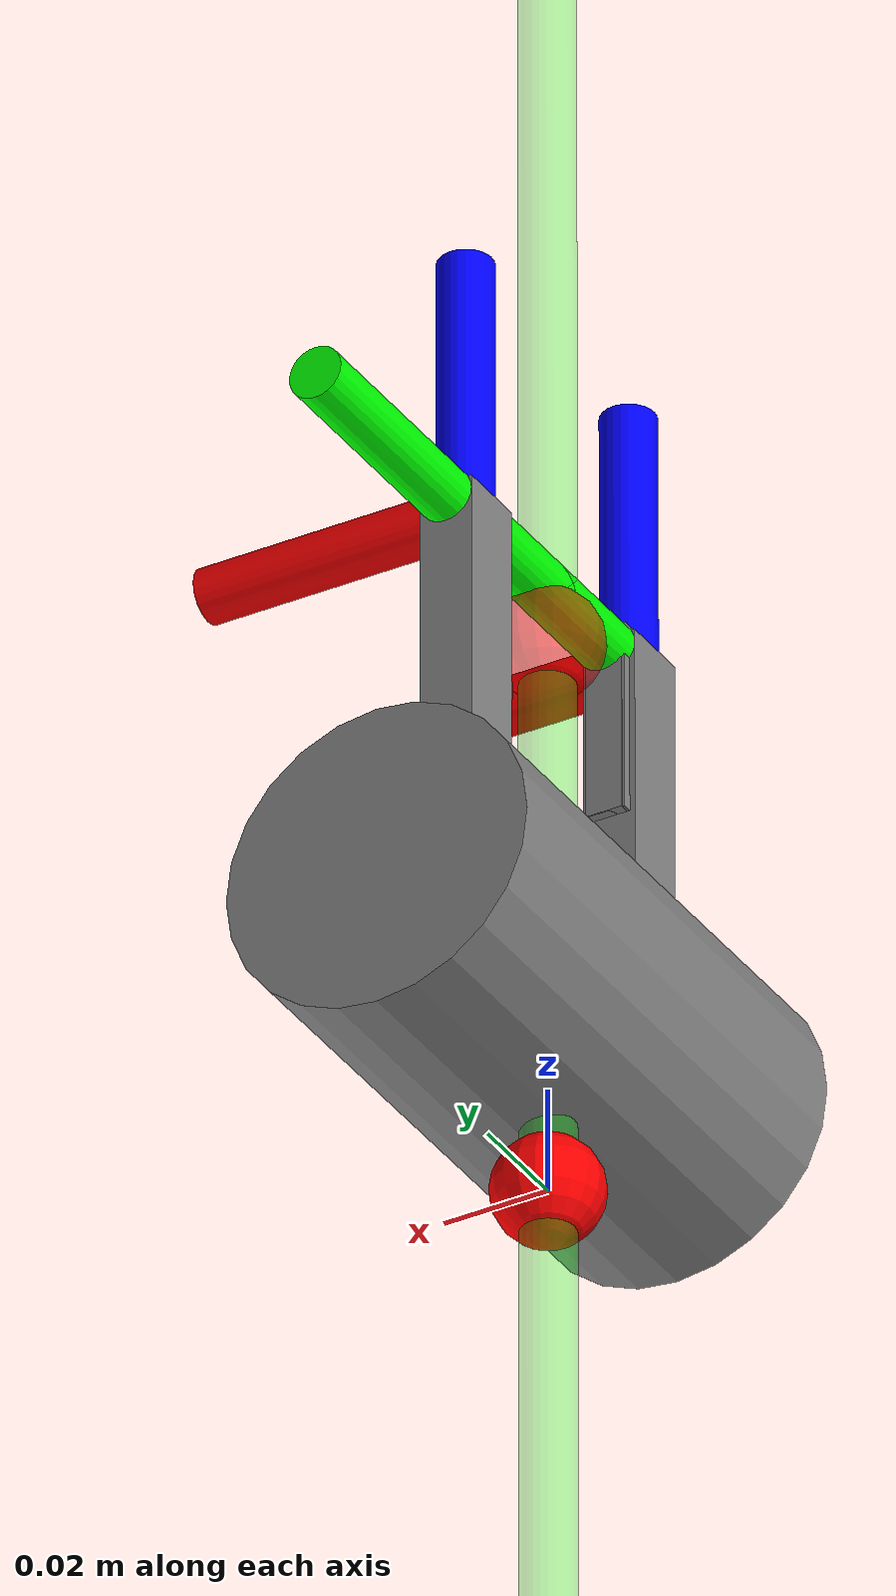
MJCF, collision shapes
<mujoco model="base">
    <asset>
        <mesh name="standard_narrow" file="meshes/rethink_gripper/standard_narrow.stl" />
        <mesh name="half_round_tip" file="meshes/rethink_gripper/half_round_tip.stl" />
	<material name="Material_001.001" specular="0.5" shininess="0.25" rgba="0.640000 0.000000 0.000000 1.000000"/>
	<material name="Material_002" specular="0.5" shininess="0.25" rgba="0.640000 0.640000 0.640000 1.000000"/>
	<mesh name="electric_gripper_base_0" file="obj_meshes/rethink_gripper/electric_gripper_base/electric_gripper_base_0.obj"/>
	<mesh name="electric_gripper_base_1" file="obj_meshes/rethink_gripper/electric_gripper_base/electric_gripper_base_1.obj"/>
	<material name="finger_mat" specular="0.5" shininess="0.25" rgba="0.000000 0.000000 0.000000 1.000000"/>
	<material name="Material_001" specular="0.5" shininess="0.25" rgba="0.001651 0.001651 0.001651 1.000000"/>
	<mesh name="connector_plate" file="obj_meshes/rethink_gripper/connector_plate/connector_plate.obj"/>
    </asset>
    <actuator>
        <position ctrllimited="true" ctrlrange="-0.0115 0.020833" joint="r_finger_joint" kp="1000" name="gripper_r_finger_joint" forcelimited="true" forcerange="-20 20"/>
        <position ctrllimited="true" ctrlrange="-0.020833 0.0115" joint="l_finger_joint" kp="1000" name="gripper_l_finger_joint" forcelimited="true" forcerange="-20 20"/>
    </actuator>
    <default>
      <default class="visual">
	<geom contype="0" conaffinity="0" group="1" type="mesh"/>
      </default>
    </default>
    <worldbody>
        <body name="gripper_base" pos="0 0 0">
            <site name="ft_frame" pos="0 0 0" size="0.01 0.01 0.01" rgba="1 0 0 1" type="sphere" group="1"/>
            <inertial pos="0 0 0" quat="-0.5 0.5 0.5 0.5" mass="0.3" diaginertia="3e-08 2e-08 2e-08" />
	    <geom material="Material_001" mesh="connector_plate" pos="0 0 0.0018" quat="0.7071068 0 0 0.7071068" class="visual"/>
	    <geom mesh="electric_gripper_base_0" material="Material_002" pos="0 0 0.0194" quat="0.7071068 0 0 0.7071068" class="visual"/>
	    <geom mesh="electric_gripper_base_1" material="Material_001.001" pos="0 0 0.0194" quat="0.7071068 0 0 0.7071068" class="visual"/>

            <geom size="0.029 0.05" quat="0 0 0.707107 0.707107" type="cylinder" group="0" name="gripper_base_col" pos="0.004 0.0 0.04"/>
            <!-- This site was added for visualization. -->
            <body name="eef" pos="0 0 0.109" quat="0.707105 0 0 -0.707105">
                <site name="grip_site" pos="0 0 0" size="0.01 0.01 0.01" rgba="1 0 0 0.5" type="sphere" group="1"/>
                <site name="ee_x" pos="0.1 0 0" size="0.005 .1"  quat="0.707105  0 0.707108 0 " rgba="1 0 0 0" type="cylinder" group="1"/>
                <site name="ee_y" pos="0 0.1 0" size="0.005 .1" quat="0.707105 0.707108 0 0" rgba="0 1 0 0" type="cylinder" group="1"/>
                <site name="ee_z" pos="0 0 0.1" size="0.005 .1" quat="1 0 0 0" rgba="0 0 1 0" type="cylinder" group="1"/>
                <!-- This site was added for visualization. -->
                <site name="grip_site_cylinder" pos="0 0 0" size="0.005 10" rgba="0 1 0 0.3" type="cylinder" group="1"/>
            </body>
            <body name="l_finger" pos="0 0.01 0.0444">
                <inertial pos="0 0 0" quat="0 0 0 -1" mass="0.02" diaginertia="0.01 0.01 0.01" />
                <joint name="l_finger_joint" pos="0 0 0" axis="0 1 0" type="slide" limited="true" range="-0.0115 0.020833" damping="100" armature="1.0" frictionloss="1.0"/>
                <geom name="l_finger" quat="0 0 0 -1" type="mesh" contype="0" conaffinity="0" group="1" mesh="standard_narrow" material="finger_mat"/>
                <geom size="0.005 0.00675 0.0375" pos="0 0.01725 0.04" quat="0 0 0 -1" type="box" group="0" conaffinity="1" contype="0" name="l_finger_g0" friction="0 0 0"/>
                <geom size="0.005 0.025 0.0085" pos="-0.005 -0.003 0.0083" quat="0 0 0 -1" type="box" group="0" conaffinity="1" contype="0" name="l_finger_g1" friction="0 0 0"/>
                <body name="l_finger_tip" pos="0 0.01725 0.075">
                    <inertial pos="0 0 0" quat="0 0 0 1" mass="0.01" diaginertia="0.01 0.01 0.01" />
                    <geom name="l_fingertip_g0_vis" quat="0 0 0 1" type="mesh" contype="0" conaffinity="0" group="1" mesh="half_round_tip" material="finger_mat"/>

                    <geom size="0.004 0.004 0.0185" pos="0 -0.0045 -0.015" quat="0 0 0 -1" type="box" group="0"  conaffinity="1" contype="0" name="l_fingertip_g0" friction="0 0 0"/>
                    <geom size="0.0035 0.004 0.0165" pos="0 -0.0047 -0.017" type="box"  conaffinity="1" contype="0" name="l_fingerpad_g0" friction="0 0 0"/>
                    <site name="l_fingertip_site"/>
                    <site name="l_fighertip_x"  size="0.005" rgba="1 0 0 1" type="cylinder" fromto="0 0 0 0.05 0 0" />
                    <site name="l_fighertip_y"  size="0.005" rgba="0 1 0 1" type="cylinder" fromto="0 0 0 0 0.05 0" />
                    <site name="l_fighertip_z"  size="0.005" rgba="0 0 1 1" type="cylinder" fromto="0 0 0 0 0 0.05" />
                </body>
            </body>
            <body name="r_finger" pos="0 -0.01 0.0444">
                <inertial pos="0 0 0" mass="0.02" diaginertia="0.01 0.01 0.01" />
                <joint name="r_finger_joint" pos="0 0 0" axis="0 1 0" type="slide" limited="true" range="-0.020833 0.0115" damping="100" armature="1.0" frictionloss="1.0"/>
                <geom name="r_finger" type="mesh" contype="0" conaffinity="0" group="1" mesh="standard_narrow" material="finger_mat"/>
                <geom size="0.005 0.00675 0.0375" pos="0 -0.01725 0.04" type="box" group="0" conaffinity="1" contype="0" name="r_finger_g0" friction="0 0 0"/>
                <geom size="0.005 0.025 0.0085" pos="0.005 0.003 0.0083" type="box" group="0" conaffinity="1" contype="0" name="r_finger_g1" friction="0 0 0"/>
                <body name="r_finger_tip" pos="0 -0.01725 0.075">
                    <inertial pos="0 0 0" mass="0.01" diaginertia="0.01 0.01 0.01" />
                    <geom name="r_fingertip_g0_vis" type="mesh" contype="0" conaffinity="0" group="1" mesh="half_round_tip" material="finger_mat"/>
                    <geom size="0.004 0.004 0.0185" pos="0 0.0045 -0.015" type="box" group="0" conaffinity="1" contype="0" name="r_fingertip_g0" friction="0 0 0"/>
                    <geom size="0.0035 0.004 0.0165" pos="0 0.0047 -0.017" type="box"  conaffinity="1" contype="0" name="r_fingerpad_g0" friction="0 0 0"/>
                    <site name="r_fingertip_site"/>
                    <site name="r_fighertip_x"  size="0.005" rgba="1 0 0 1" type="cylinder" fromto="0 0 0 0.05 0 0" />
                    <site name="r_fighertip_y"  size="0.005" rgba="0 1 0 1" type="cylinder" fromto="0 0 0 0 0.05 0" />
                    <site name="r_fighertip_z"  size="0.005" rgba="0 0 1 1" type="cylinder" fromto="0 0 0 0 0 0.05" />

                </body>
            </body>
        </body>
    </worldbody>
    <sensor>
        <force name="force_ee" site="ft_frame"/>
        <torque name="torque_ee" site="ft_frame"/>

        <accelerometer name="l_fingertip_acc" site="l_fingertip_site"/>
        <accelerometer name="r_fingertip_acc" site="r_fingertip_site"/>

        <force name="l_fingertip_force" site="l_fingertip_site"/>
        <force name="r_fingertip_force" site="r_fingertip_site"/>

        <touch name="l_fingertip_touch" site="l_fingertip_site"/>
        <touch name="r_fingertip_touch" site="r_fingertip_site"/>

    </sensor>
</mujoco>
